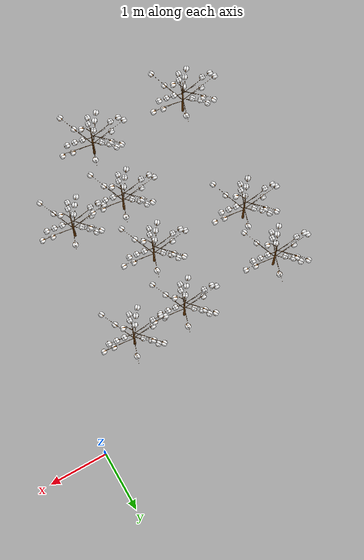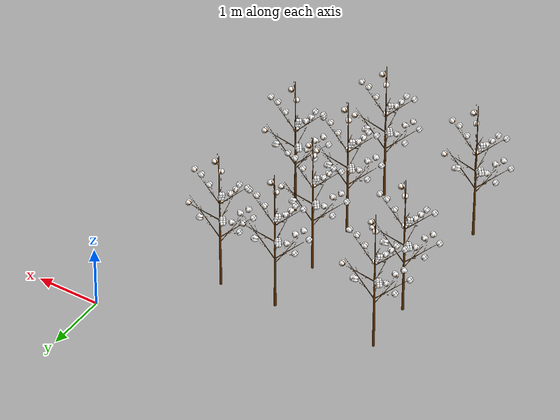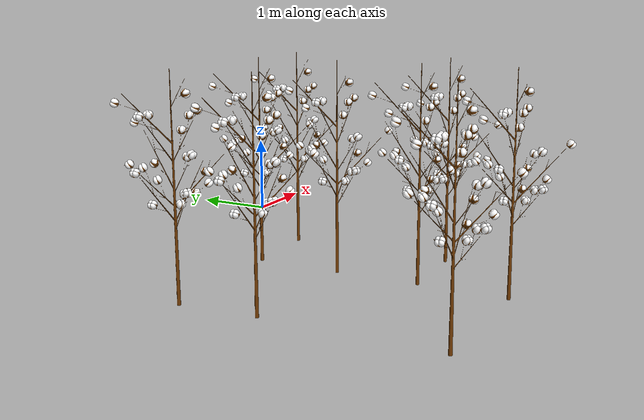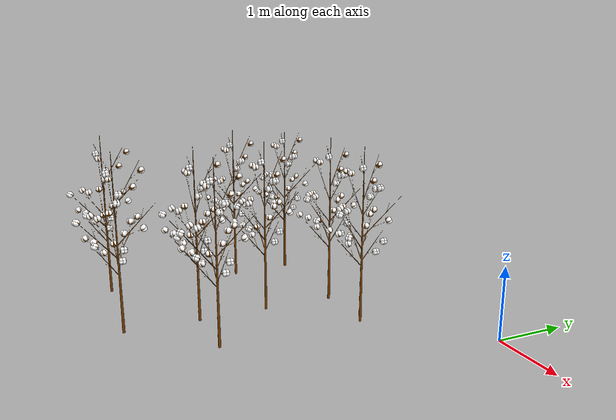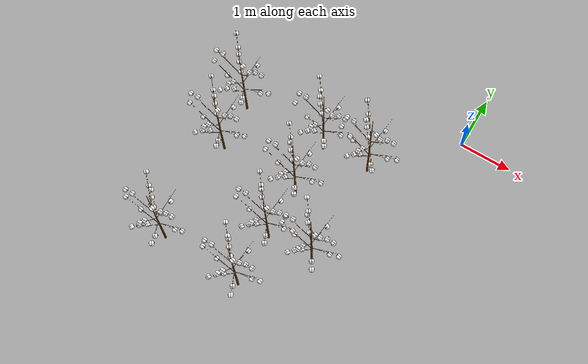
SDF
<sdf version="1.6">
 <world name="default">
  <model name="ground_plane">
   <scale>1 1 1</scale>
   <link name="link">
    <velocity>0 0 0 0 -0 0</velocity>
    <acceleration>0 0 0 0 -0 0</acceleration>
    <wrench>0 0 0 0 -0 0</wrench>
   </link>
  </model>
  <model name="cotton_clone_1_clone_0">
   <link name="link">
    <collision name="collision">
     <geometry><mesh><scale>1 1 1</scale><uri>model://cotton/meshes/cotton.dae</uri></mesh></geometry>
    </collision>
    <inertial>
     <mass>1</mass>
     <inertia>
      <ixx>0.166667</ixx>
      <ixy>0</ixy>
      <ixz>0</ixz>
      <iyy>0.166667</iyy>
      <iyz>0</iyz>
      <izz>0.166667</izz>
     </inertia>
    </inertial>
    <visual name="visual">
     <geometry><mesh><scale>1 1 1</scale><uri>model://cotton/meshes/cotton.dae</uri></mesh></geometry>
    </visual>
    <velocity_decay><linear>0</linear><angular>0</angular></velocity_decay>
    <gravity>0</gravity>
   </link>
   <pose>-0.304355 -5.03714 0 0 -0 0</pose>
   <static>1</static>
  </model>
  <model name="cotton_clone_1_clone_clone">
   <link name="link">
    <collision name="collision">
     <geometry><mesh><scale>1 1 1</scale><uri>model://cotton/meshes/cotton.dae</uri></mesh></geometry>
    </collision>
    <inertial>
     <mass>1</mass>
     <inertia>
      <ixx>0.166667</ixx>
      <ixy>0</ixy>
      <ixz>0</ixz>
      <iyy>0.166667</iyy>
      <iyz>0</iyz>
      <izz>0.166667</izz>
     </inertia>
    </inertial>
    <visual name="visual">
     <geometry><mesh><scale>1 1 1</scale><uri>model://cotton/meshes/cotton.dae</uri></mesh></geometry>
    </visual>
    <velocity_decay><linear>0</linear><angular>0</angular></velocity_decay>
    <gravity>0</gravity>
   </link>
   <pose>2.202172 -4.084283 0 0 -0 0</pose>
   <static>1</static>
  </model>
  <model name="cotton_clone_1_clone_clone_1">
   <link name="link">
    <collision name="collision">
     <geometry><mesh><scale>1 1 1</scale><uri>model://cotton/meshes/cotton.dae</uri></mesh></geometry>
    </collision>
    <inertial>
     <mass>1</mass>
     <inertia>
      <ixx>0.166667</ixx>
      <ixy>0</ixy>
      <ixz>0</ixz>
      <iyy>0.166667</iyy>
      <iyz>0</iyz>
      <izz>0.166667</izz>
     </inertia>
    </inertial>
    <visual name="visual">
     <geometry><mesh><scale>1 1 1</scale><uri>model://cotton/meshes/cotton.dae</uri></mesh></geometry>
    </visual>
    <velocity_decay><linear>0</linear><angular>0</angular></velocity_decay>
    <gravity>0</gravity>
   </link>
   <pose>1.299173 -4.088880 0 0 -0 0</pose>
   <static>1</static>
  </model>
  <model name="cotton_clone_1_clone_clone_2">
   <link name="link">
    <collision name="collision">
     <geometry><mesh><scale>1 1 1</scale><uri>model://cotton/meshes/cotton.dae</uri></mesh></geometry>
    </collision>
    <inertial>
     <mass>1</mass>
     <inertia>
      <ixx>0.166667</ixx>
      <ixy>0</ixy>
      <ixz>0</ixz>
      <iyy>0.166667</iyy>
      <iyz>0</iyz>
      <izz>0.166667</izz>
     </inertia>
    </inertial>
    <visual name="visual">
     <geometry><mesh><scale>1 1 1</scale><uri>model://cotton/meshes/cotton.dae</uri></mesh></geometry>
    </visual>
    <velocity_decay><linear>0</linear><angular>0</angular></velocity_decay>
    <gravity>0</gravity>
   </link>
   <pose>1.28207 -5.11188 0 0 -0 0</pose>
   <static>1</static>
  </model>
  <model name="cotton_clone_15">
   <link name="link">
    <collision name="collision">
     <geometry><mesh><scale>1 1 1</scale><uri>model://cotton/meshes/cotton.dae</uri></mesh></geometry>
    </collision>
    <inertial>
     <mass>1</mass>
     <inertia>
      <ixx>0.166667</ixx>
      <ixy>0</ixy>
      <ixz>0</ixz>
      <iyy>0.166667</iyy>
      <iyz>0</iyz>
      <izz>0.166667</izz>
     </inertia>
    </inertial>
    <visual name="visual">
     <geometry><mesh><scale>1 1 1</scale><uri>model://cotton/meshes/cotton.dae</uri></mesh></geometry>
    </visual>
    <velocity_decay><linear>0</linear><angular>0</angular></velocity_decay>
    <gravity>0</gravity>
   </link>
   <pose>-0.363088 -2.138568 0 0 -0 0</pose>
   <static>1</static>
  </model>
  <model name="cotton_clone_16">
   <link name="link">
    <collision name="collision">
     <geometry><mesh><scale>1 1 1</scale><uri>model://cotton/meshes/cotton.dae</uri></mesh></geometry>
    </collision>
    <inertial>
     <mass>1</mass>
     <inertia>
      <ixx>0.166667</ixx>
      <ixy>0</ixy>
      <ixz>0</ixz>
      <iyy>0.166667</iyy>
      <iyz>0</iyz>
      <izz>0.166667</izz>
     </inertia>
    </inertial>
    <visual name="visual">
     <geometry><mesh><scale>1 1 1</scale><uri>model://cotton/meshes/cotton.dae</uri></mesh></geometry>
    </visual>
    <velocity_decay><linear>0</linear><angular>0</angular></velocity_decay>
    <gravity>0</gravity>
   </link>
   <pose>-0.304355 -3.03714 0 0 -0 0</pose>
   <static>1</static>
  </model>
  <model name="cotton_clone_17">
   <link name="link">
    <collision name="collision">
     <geometry><mesh><scale>1 1 1</scale><uri>model://cotton/meshes/cotton.dae</uri></mesh></geometry>
    </collision>
    <inertial>
     <mass>1</mass>
     <inertia>
      <ixx>0.166667</ixx>
      <ixy>0</ixy>
      <ixz>0</ixz>
      <iyy>0.166667</iyy>
      <iyz>0</iyz>
      <izz>0.166667</izz>
     </inertia>
    </inertial>
    <visual name="visual">
     <geometry><mesh><scale>1 1 1</scale><uri>model://cotton/meshes/cotton.dae</uri></mesh></geometry>
    </visual>
    <velocity_decay><linear>0</linear><angular>0</angular></velocity_decay>
    <gravity>0</gravity>
   </link>
   <pose>2.202172 -2.084283 0 0 -0 0</pose>
   <static>1</static>
  </model>
  <model name="cotton_clone_19">
   <link name="link">
    <collision name="collision">
     <geometry><mesh><scale>1 1 1</scale><uri>model://cotton/meshes/cotton.dae</uri></mesh></geometry>
    </collision>
    <inertial>
     <mass>1</mass>
     <inertia>
      <ixx>0.166667</ixx>
      <ixy>0</ixy>
      <ixz>0</ixz>
      <iyy>0.166667</iyy>
      <iyz>0</iyz>
      <izz>0.166667</izz>
     </inertia>
    </inertial>
    <visual name="visual">
     <geometry><mesh><scale>1 1 1</scale><uri>model://cotton/meshes/cotton.dae</uri></mesh></geometry>
    </visual>
    <velocity_decay><linear>0</linear><angular>0</angular></velocity_decay>
    <gravity>0</gravity>
   </link>
   <pose>1.28207 -3.11188 0 0 -0 0</pose>
   <static>1</static>
  </model>
  <model name="cotton_clone_x">
   <link name="link">
    <collision name="collision">
     <geometry><mesh><scale>1 1 1</scale><uri>model://cotton/meshes/cotton.dae</uri></mesh></geometry>
    </collision>
    <inertial>
     <mass>1</mass>
     <inertia>
      <ixx>0.166667</ixx>
      <ixy>0</ixy>
      <ixz>0</ixz>
      <iyy>0.166667</iyy>
      <iyz>0</iyz>
      <izz>0.166667</izz>
     </inertia>
    </inertial>
    <visual name="visual">
     <geometry><mesh><scale>1 1 1</scale><uri>model://cotton/meshes/cotton.dae</uri></mesh></geometry>
    </visual>
    <velocity_decay><linear>0</linear><angular>0</angular></velocity_decay>
    <gravity>0</gravity>
   </link>
   <pose>1.28207 -2.11188 0 0 -0 0</pose>
   <static>1</static>
  </model>
 </world>
</sdf>
